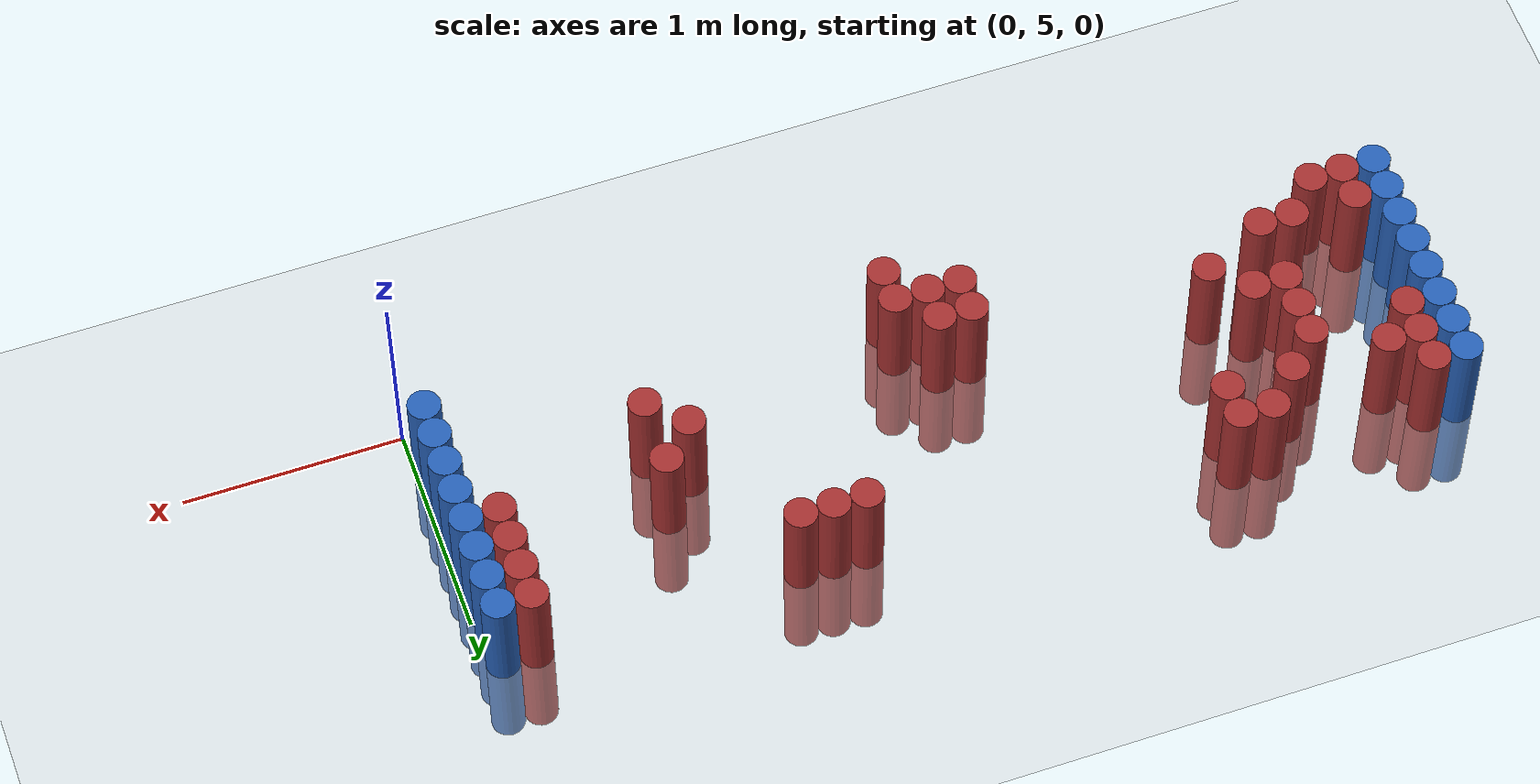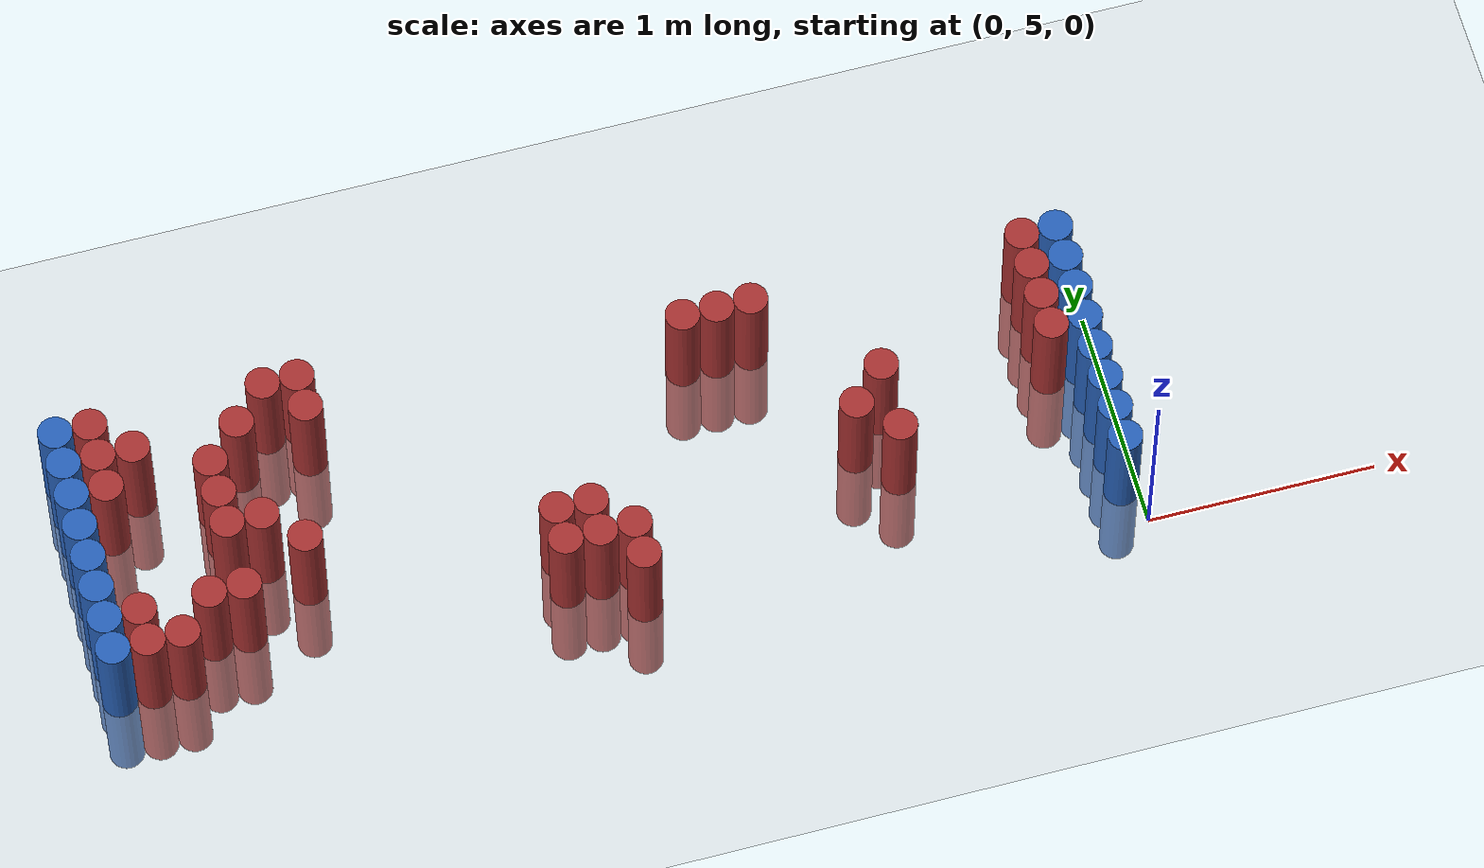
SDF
<sdf version="1.6">
 <world name="default">
  <model name="ground_plane">
   <static>1</static>
   <link name="link">
    <collision name="collision">
     <geometry><plane><normal>0 0 1</normal><size>100 100</size></plane></geometry>
     <surface><friction><ode><mu>100</mu><mu2>50</mu2></ode></friction></surface>
    </collision>
    <visual name="visual">
     <cast_shadows>0</cast_shadows>
     <geometry><plane><normal>0 0 1</normal><size>100 100</size></plane></geometry>
     <material>
      <script><uri>file://media/materials/scripts/gazebo.material</uri><name>Gazebo/Grey</name></script>
     </material>
    </visual>
   </link>
  </model>
  <model name="unit_cylinder_97">
   <static>1</static>
   <pose>-4.425000 5.325000 0.000000 0.000000 0.000000 0.000000</pose>
   <link name="link">
    <inertial>
     <mass>1</mass>
     <inertia><ixx>0.145833</ixx><ixy>0</ixy><ixz>0</ixz><iyy>0.145833</iyy><iyz>0</iyz><izz>0.125</izz></inertia>
    </inertial>
    <collision name="collision">
     <geometry><cylinder><radius>0.075000</radius><length>1</length></cylinder></geometry>
    </collision>
    <visual name="visual">
     <geometry><cylinder><radius>0.075000</radius><length>1</length></cylinder></geometry>
     <material>
      <ambient>0.152000 0.379000 0.720000 1</ambient>
      <diffuse>0.152000 0.379000 0.720000 1</diffuse>
     </material>
     <material>
      <script><name>Gazebo/Grey</name><uri>file://media/materials/scripts/gazebo.material</uri></script>
     </material>
    </visual>
   </link>
  </model>
  <model name="unit_cylinder_98">
   <static>1</static>
   <pose>-4.425000 5.475000 0.000000 0.000000 0.000000 0.000000</pose>
   <link name="link">
    <inertial>
     <mass>1</mass>
     <inertia><ixx>0.145833</ixx><ixy>0</ixy><ixz>0</ixz><iyy>0.145833</iyy><iyz>0</iyz><izz>0.125</izz></inertia>
    </inertial>
    <collision name="collision">
     <geometry><cylinder><radius>0.075000</radius><length>1</length></cylinder></geometry>
    </collision>
    <visual name="visual">
     <geometry><cylinder><radius>0.075000</radius><length>1</length></cylinder></geometry>
     <material>
      <ambient>0.152000 0.379000 0.720000 1</ambient>
      <diffuse>0.152000 0.379000 0.720000 1</diffuse>
     </material>
     <material>
      <script><name>Gazebo/Grey</name><uri>file://media/materials/scripts/gazebo.material</uri></script>
     </material>
    </visual>
   </link>
  </model>
  <model name="unit_cylinder_99">
   <static>1</static>
   <pose>-4.425000 5.625000 0.000000 0.000000 0.000000 0.000000</pose>
   <link name="link">
    <inertial>
     <mass>1</mass>
     <inertia><ixx>0.145833</ixx><ixy>0</ixy><ixz>0</ixz><iyy>0.145833</iyy><iyz>0</iyz><izz>0.125</izz></inertia>
    </inertial>
    <collision name="collision">
     <geometry><cylinder><radius>0.075000</radius><length>1</length></cylinder></geometry>
    </collision>
    <visual name="visual">
     <geometry><cylinder><radius>0.075000</radius><length>1</length></cylinder></geometry>
     <material>
      <ambient>0.152000 0.379000 0.720000 1</ambient>
      <diffuse>0.152000 0.379000 0.720000 1</diffuse>
     </material>
     <material>
      <script><name>Gazebo/Grey</name><uri>file://media/materials/scripts/gazebo.material</uri></script>
     </material>
    </visual>
   </link>
  </model>
  <model name="unit_cylinder_100">
   <static>1</static>
   <pose>-4.425000 5.775000 0.000000 0.000000 0.000000 0.000000</pose>
   <link name="link">
    <inertial>
     <mass>1</mass>
     <inertia><ixx>0.145833</ixx><ixy>0</ixy><ixz>0</ixz><iyy>0.145833</iyy><iyz>0</iyz><izz>0.125</izz></inertia>
    </inertial>
    <collision name="collision">
     <geometry><cylinder><radius>0.075000</radius><length>1</length></cylinder></geometry>
    </collision>
    <visual name="visual">
     <geometry><cylinder><radius>0.075000</radius><length>1</length></cylinder></geometry>
     <material>
      <ambient>0.152000 0.379000 0.720000 1</ambient>
      <diffuse>0.152000 0.379000 0.720000 1</diffuse>
     </material>
     <material>
      <script><name>Gazebo/Grey</name><uri>file://media/materials/scripts/gazebo.material</uri></script>
     </material>
    </visual>
   </link>
  </model>
  <model name="unit_cylinder_101">
   <static>1</static>
   <pose>-4.425000 5.925000 0.000000 0.000000 0.000000 0.000000</pose>
   <link name="link">
    <inertial>
     <mass>1</mass>
     <inertia><ixx>0.145833</ixx><ixy>0</ixy><ixz>0</ixz><iyy>0.145833</iyy><iyz>0</iyz><izz>0.125</izz></inertia>
    </inertial>
    <collision name="collision">
     <geometry><cylinder><radius>0.075000</radius><length>1</length></cylinder></geometry>
    </collision>
    <visual name="visual">
     <geometry><cylinder><radius>0.075000</radius><length>1</length></cylinder></geometry>
     <material>
      <ambient>0.152000 0.379000 0.720000 1</ambient>
      <diffuse>0.152000 0.379000 0.720000 1</diffuse>
     </material>
     <material>
      <script><name>Gazebo/Grey</name><uri>file://media/materials/scripts/gazebo.material</uri></script>
     </material>
    </visual>
   </link>
  </model>
  <model name="unit_cylinder_102">
   <static>1</static>
   <pose>-4.425000 6.075000 0.000000 0.000000 0.000000 0.000000</pose>
   <link name="link">
    <inertial>
     <mass>1</mass>
     <inertia><ixx>0.145833</ixx><ixy>0</ixy><ixz>0</ixz><iyy>0.145833</iyy><iyz>0</iyz><izz>0.125</izz></inertia>
    </inertial>
    <collision name="collision">
     <geometry><cylinder><radius>0.075000</radius><length>1</length></cylinder></geometry>
    </collision>
    <visual name="visual">
     <geometry><cylinder><radius>0.075000</radius><length>1</length></cylinder></geometry>
     <material>
      <ambient>0.152000 0.379000 0.720000 1</ambient>
      <diffuse>0.152000 0.379000 0.720000 1</diffuse>
     </material>
     <material>
      <script><name>Gazebo/Grey</name><uri>file://media/materials/scripts/gazebo.material</uri></script>
     </material>
    </visual>
   </link>
  </model>
  <model name="unit_cylinder_103">
   <static>1</static>
   <pose>-4.425000 6.225000 0.000000 0.000000 0.000000 0.000000</pose>
   <link name="link">
    <inertial>
     <mass>1</mass>
     <inertia><ixx>0.145833</ixx><ixy>0</ixy><ixz>0</ixz><iyy>0.145833</iyy><iyz>0</iyz><izz>0.125</izz></inertia>
    </inertial>
    <collision name="collision">
     <geometry><cylinder><radius>0.075000</radius><length>1</length></cylinder></geometry>
    </collision>
    <visual name="visual">
     <geometry><cylinder><radius>0.075000</radius><length>1</length></cylinder></geometry>
     <material>
      <ambient>0.152000 0.379000 0.720000 1</ambient>
      <diffuse>0.152000 0.379000 0.720000 1</diffuse>
     </material>
     <material>
      <script><name>Gazebo/Grey</name><uri>file://media/materials/scripts/gazebo.material</uri></script>
     </material>
    </visual>
   </link>
  </model>
  <model name="unit_cylinder_104">
   <static>1</static>
   <pose>-4.425000 6.375000 0.000000 0.000000 0.000000 0.000000</pose>
   <link name="link">
    <inertial>
     <mass>1</mass>
     <inertia><ixx>0.145833</ixx><ixy>0</ixy><ixz>0</ixz><iyy>0.145833</iyy><iyz>0</iyz><izz>0.125</izz></inertia>
    </inertial>
    <collision name="collision">
     <geometry><cylinder><radius>0.075000</radius><length>1</length></cylinder></geometry>
    </collision>
    <visual name="visual">
     <geometry><cylinder><radius>0.075000</radius><length>1</length></cylinder></geometry>
     <material>
      <ambient>0.152000 0.379000 0.720000 1</ambient>
      <diffuse>0.152000 0.379000 0.720000 1</diffuse>
     </material>
     <material>
      <script><name>Gazebo/Grey</name><uri>file://media/materials/scripts/gazebo.material</uri></script>
     </material>
    </visual>
   </link>
  </model>
  <model name="unit_cylinder_127">
   <static>1</static>
   <pose>-4.275000 5.325000 0.000000 0.000000 0.000000 0.000000</pose>
   <link name="link">
    <inertial>
     <mass>1</mass>
     <inertia><ixx>0.145833</ixx><ixy>0</ixy><ixz>0</ixz><iyy>0.145833</iyy><iyz>0</iyz><izz>0.125</izz></inertia>
    </inertial>
    <collision name="collision">
     <geometry><cylinder><radius>0.075000</radius><length>1</length></cylinder></geometry>
    </collision>
    <visual name="visual">
     <geometry><cylinder><radius>0.075000</radius><length>1</length></cylinder></geometry>
     <material>
      <ambient>0.648000 0.192000 0.192000 1</ambient>
      <diffuse>0.648000 0.192000 0.192000 1</diffuse>
     </material>
     <material>
      <script><name>Gazebo/Grey</name><uri>file://media/materials/scripts/gazebo.material</uri></script>
     </material>
    </visual>
   </link>
  </model>
  <model name="unit_cylinder_128">
   <static>1</static>
   <pose>-4.275000 5.475000 0.000000 0.000000 0.000000 0.000000</pose>
   <link name="link">
    <inertial>
     <mass>1</mass>
     <inertia><ixx>0.145833</ixx><ixy>0</ixy><ixz>0</ixz><iyy>0.145833</iyy><iyz>0</iyz><izz>0.125</izz></inertia>
    </inertial>
    <collision name="collision">
     <geometry><cylinder><radius>0.075000</radius><length>1</length></cylinder></geometry>
    </collision>
    <visual name="visual">
     <geometry><cylinder><radius>0.075000</radius><length>1</length></cylinder></geometry>
     <material>
      <ambient>0.648000 0.192000 0.192000 1</ambient>
      <diffuse>0.648000 0.192000 0.192000 1</diffuse>
     </material>
     <material>
      <script><name>Gazebo/Grey</name><uri>file://media/materials/scripts/gazebo.material</uri></script>
     </material>
    </visual>
   </link>
  </model>
  <model name="unit_cylinder_129">
   <static>1</static>
   <pose>-4.275000 6.075000 0.000000 0.000000 0.000000 0.000000</pose>
   <link name="link">
    <inertial>
     <mass>1</mass>
     <inertia><ixx>0.145833</ixx><ixy>0</ixy><ixz>0</ixz><iyy>0.145833</iyy><iyz>0</iyz><izz>0.125</izz></inertia>
    </inertial>
    <collision name="collision">
     <geometry><cylinder><radius>0.075000</radius><length>1</length></cylinder></geometry>
    </collision>
    <visual name="visual">
     <geometry><cylinder><radius>0.075000</radius><length>1</length></cylinder></geometry>
     <material>
      <ambient>0.648000 0.192000 0.192000 1</ambient>
      <diffuse>0.648000 0.192000 0.192000 1</diffuse>
     </material>
     <material>
      <script><name>Gazebo/Grey</name><uri>file://media/materials/scripts/gazebo.material</uri></script>
     </material>
    </visual>
   </link>
  </model>
  <model name="unit_cylinder_130">
   <static>1</static>
   <pose>-4.275000 6.225000 0.000000 0.000000 0.000000 0.000000</pose>
   <link name="link">
    <inertial>
     <mass>1</mass>
     <inertia><ixx>0.145833</ixx><ixy>0</ixy><ixz>0</ixz><iyy>0.145833</iyy><iyz>0</iyz><izz>0.125</izz></inertia>
    </inertial>
    <collision name="collision">
     <geometry><cylinder><radius>0.075000</radius><length>1</length></cylinder></geometry>
    </collision>
    <visual name="visual">
     <geometry><cylinder><radius>0.075000</radius><length>1</length></cylinder></geometry>
     <material>
      <ambient>0.648000 0.192000 0.192000 1</ambient>
      <diffuse>0.648000 0.192000 0.192000 1</diffuse>
     </material>
     <material>
      <script><name>Gazebo/Grey</name><uri>file://media/materials/scripts/gazebo.material</uri></script>
     </material>
    </visual>
   </link>
  </model>
  <model name="unit_cylinder_131">
   <static>1</static>
   <pose>-4.275000 6.375000 0.000000 0.000000 0.000000 0.000000</pose>
   <link name="link">
    <inertial>
     <mass>1</mass>
     <inertia><ixx>0.145833</ixx><ixy>0</ixy><ixz>0</ixz><iyy>0.145833</iyy><iyz>0</iyz><izz>0.125</izz></inertia>
    </inertial>
    <collision name="collision">
     <geometry><cylinder><radius>0.075000</radius><length>1</length></cylinder></geometry>
    </collision>
    <visual name="visual">
     <geometry><cylinder><radius>0.075000</radius><length>1</length></cylinder></geometry>
     <material>
      <ambient>0.648000 0.192000 0.192000 1</ambient>
      <diffuse>0.648000 0.192000 0.192000 1</diffuse>
     </material>
     <material>
      <script><name>Gazebo/Grey</name><uri>file://media/materials/scripts/gazebo.material</uri></script>
     </material>
    </visual>
   </link>
  </model>
  <model name="unit_cylinder_141">
   <static>1</static>
   <pose>-4.125000 5.325000 0.000000 0.000000 0.000000 0.000000</pose>
   <link name="link">
    <inertial>
     <mass>1</mass>
     <inertia><ixx>0.145833</ixx><ixy>0</ixy><ixz>0</ixz><iyy>0.145833</iyy><iyz>0</iyz><izz>0.125</izz></inertia>
    </inertial>
    <collision name="collision">
     <geometry><cylinder><radius>0.075000</radius><length>1</length></cylinder></geometry>
    </collision>
    <visual name="visual">
     <geometry><cylinder><radius>0.075000</radius><length>1</length></cylinder></geometry>
     <material>
      <ambient>0.648000 0.192000 0.192000 1</ambient>
      <diffuse>0.648000 0.192000 0.192000 1</diffuse>
     </material>
     <material>
      <script><name>Gazebo/Grey</name><uri>file://media/materials/scripts/gazebo.material</uri></script>
     </material>
    </visual>
   </link>
  </model>
  <model name="unit_cylinder_142">
   <static>1</static>
   <pose>-4.125000 6.225000 0.000000 0.000000 0.000000 0.000000</pose>
   <link name="link">
    <inertial>
     <mass>1</mass>
     <inertia><ixx>0.145833</ixx><ixy>0</ixy><ixz>0</ixz><iyy>0.145833</iyy><iyz>0</iyz><izz>0.125</izz></inertia>
    </inertial>
    <collision name="collision">
     <geometry><cylinder><radius>0.075000</radius><length>1</length></cylinder></geometry>
    </collision>
    <visual name="visual">
     <geometry><cylinder><radius>0.075000</radius><length>1</length></cylinder></geometry>
     <material>
      <ambient>0.648000 0.192000 0.192000 1</ambient>
      <diffuse>0.648000 0.192000 0.192000 1</diffuse>
     </material>
     <material>
      <script><name>Gazebo/Grey</name><uri>file://media/materials/scripts/gazebo.material</uri></script>
     </material>
    </visual>
   </link>
  </model>
  <model name="unit_cylinder_143">
   <static>1</static>
   <pose>-3.975000 5.475000 0.000000 0.000000 0.000000 0.000000</pose>
   <link name="link">
    <inertial>
     <mass>1</mass>
     <inertia><ixx>0.145833</ixx><ixy>0</ixy><ixz>0</ixz><iyy>0.145833</iyy><iyz>0</iyz><izz>0.125</izz></inertia>
    </inertial>
    <collision name="collision">
     <geometry><cylinder><radius>0.075000</radius><length>1</length></cylinder></geometry>
    </collision>
    <visual name="visual">
     <geometry><cylinder><radius>0.075000</radius><length>1</length></cylinder></geometry>
     <material>
      <ambient>0.648000 0.192000 0.192000 1</ambient>
      <diffuse>0.648000 0.192000 0.192000 1</diffuse>
     </material>
     <material>
      <script><name>Gazebo/Grey</name><uri>file://media/materials/scripts/gazebo.material</uri></script>
     </material>
    </visual>
   </link>
  </model>
  <model name="unit_cylinder_144">
   <static>1</static>
   <pose>-3.825000 5.475000 0.000000 0.000000 0.000000 0.000000</pose>
   <link name="link">
    <inertial>
     <mass>1</mass>
     <inertia><ixx>0.145833</ixx><ixy>0</ixy><ixz>0</ixz><iyy>0.145833</iyy><iyz>0</iyz><izz>0.125</izz></inertia>
    </inertial>
    <collision name="collision">
     <geometry><cylinder><radius>0.075000</radius><length>1</length></cylinder></geometry>
    </collision>
    <visual name="visual">
     <geometry><cylinder><radius>0.075000</radius><length>1</length></cylinder></geometry>
     <material>
      <ambient>0.648000 0.192000 0.192000 1</ambient>
      <diffuse>0.648000 0.192000 0.192000 1</diffuse>
     </material>
     <material>
      <script><name>Gazebo/Grey</name><uri>file://media/materials/scripts/gazebo.material</uri></script>
     </material>
    </visual>
   </link>
  </model>
  <model name="unit_cylinder_145">
   <static>1</static>
   <pose>-3.825000 5.775000 0.000000 0.000000 0.000000 0.000000</pose>
   <link name="link">
    <inertial>
     <mass>1</mass>
     <inertia><ixx>0.145833</ixx><ixy>0</ixy><ixz>0</ixz><iyy>0.145833</iyy><iyz>0</iyz><izz>0.125</izz></inertia>
    </inertial>
    <collision name="collision">
     <geometry><cylinder><radius>0.075000</radius><length>1</length></cylinder></geometry>
    </collision>
    <visual name="visual">
     <geometry><cylinder><radius>0.075000</radius><length>1</length></cylinder></geometry>
     <material>
      <ambient>0.648000 0.192000 0.192000 1</ambient>
      <diffuse>0.648000 0.192000 0.192000 1</diffuse>
     </material>
     <material>
      <script><name>Gazebo/Grey</name><uri>file://media/materials/scripts/gazebo.material</uri></script>
     </material>
    </visual>
   </link>
  </model>
  <model name="unit_cylinder_146">
   <static>1</static>
   <pose>-3.825000 5.925000 0.000000 0.000000 0.000000 0.000000</pose>
   <link name="link">
    <inertial>
     <mass>1</mass>
     <inertia><ixx>0.145833</ixx><ixy>0</ixy><ixz>0</ixz><iyy>0.145833</iyy><iyz>0</iyz><izz>0.125</izz></inertia>
    </inertial>
    <collision name="collision">
     <geometry><cylinder><radius>0.075000</radius><length>1</length></cylinder></geometry>
    </collision>
    <visual name="visual">
     <geometry><cylinder><radius>0.075000</radius><length>1</length></cylinder></geometry>
     <material>
      <ambient>0.648000 0.192000 0.192000 1</ambient>
      <diffuse>0.648000 0.192000 0.192000 1</diffuse>
     </material>
     <material>
      <script><name>Gazebo/Grey</name><uri>file://media/materials/scripts/gazebo.material</uri></script>
     </material>
    </visual>
   </link>
  </model>
  <model name="unit_cylinder_147">
   <static>1</static>
   <pose>-3.825000 6.075000 0.000000 0.000000 0.000000 0.000000</pose>
   <link name="link">
    <inertial>
     <mass>1</mass>
     <inertia><ixx>0.145833</ixx><ixy>0</ixy><ixz>0</ixz><iyy>0.145833</iyy><iyz>0</iyz><izz>0.125</izz></inertia>
    </inertial>
    <collision name="collision">
     <geometry><cylinder><radius>0.075000</radius><length>1</length></cylinder></geometry>
    </collision>
    <visual name="visual">
     <geometry><cylinder><radius>0.075000</radius><length>1</length></cylinder></geometry>
     <material>
      <ambient>0.648000 0.192000 0.192000 1</ambient>
      <diffuse>0.648000 0.192000 0.192000 1</diffuse>
     </material>
     <material>
      <script><name>Gazebo/Grey</name><uri>file://media/materials/scripts/gazebo.material</uri></script>
     </material>
    </visual>
   </link>
  </model>
  <model name="unit_cylinder_148">
   <static>1</static>
   <pose>-3.675000 5.775000 0.000000 0.000000 0.000000 0.000000</pose>
   <link name="link">
    <inertial>
     <mass>1</mass>
     <inertia><ixx>0.145833</ixx><ixy>0</ixy><ixz>0</ixz><iyy>0.145833</iyy><iyz>0</iyz><izz>0.125</izz></inertia>
    </inertial>
    <collision name="collision">
     <geometry><cylinder><radius>0.075000</radius><length>1</length></cylinder></geometry>
    </collision>
    <visual name="visual">
     <geometry><cylinder><radius>0.075000</radius><length>1</length></cylinder></geometry>
     <material>
      <ambient>0.648000 0.192000 0.192000 1</ambient>
      <diffuse>0.648000 0.192000 0.192000 1</diffuse>
     </material>
     <material>
      <script><name>Gazebo/Grey</name><uri>file://media/materials/scripts/gazebo.material</uri></script>
     </material>
    </visual>
   </link>
  </model>
  <model name="unit_cylinder_149">
   <static>1</static>
   <pose>-3.675000 6.225000 0.000000 0.000000 0.000000 0.000000</pose>
   <link name="link">
    <inertial>
     <mass>1</mass>
     <inertia><ixx>0.145833</ixx><ixy>0</ixy><ixz>0</ixz><iyy>0.145833</iyy><iyz>0</iyz><izz>0.125</izz></inertia>
    </inertial>
    <collision name="collision">
     <geometry><cylinder><radius>0.075000</radius><length>1</length></cylinder></geometry>
    </collision>
    <visual name="visual">
     <geometry><cylinder><radius>0.075000</radius><length>1</length></cylinder></geometry>
     <material>
      <ambient>0.648000 0.192000 0.192000 1</ambient>
      <diffuse>0.648000 0.192000 0.192000 1</diffuse>
     </material>
     <material>
      <script><name>Gazebo/Grey</name><uri>file://media/materials/scripts/gazebo.material</uri></script>
     </material>
    </visual>
   </link>
  </model>
  <model name="unit_cylinder_150">
   <static>1</static>
   <pose>-3.525000 5.625000 0.000000 0.000000 0.000000 0.000000</pose>
   <link name="link">
    <inertial>
     <mass>1</mass>
     <inertia><ixx>0.145833</ixx><ixy>0</ixy><ixz>0</ixz><iyy>0.145833</iyy><iyz>0</iyz><izz>0.125</izz></inertia>
    </inertial>
    <collision name="collision">
     <geometry><cylinder><radius>0.075000</radius><length>1</length></cylinder></geometry>
    </collision>
    <visual name="visual">
     <geometry><cylinder><radius>0.075000</radius><length>1</length></cylinder></geometry>
     <material>
      <ambient>0.648000 0.192000 0.192000 1</ambient>
      <diffuse>0.648000 0.192000 0.192000 1</diffuse>
     </material>
     <material>
      <script><name>Gazebo/Grey</name><uri>file://media/materials/scripts/gazebo.material</uri></script>
     </material>
    </visual>
   </link>
  </model>
  <model name="unit_cylinder_151">
   <static>1</static>
   <pose>-3.525000 6.375000 0.000000 0.000000 0.000000 0.000000</pose>
   <link name="link">
    <inertial>
     <mass>1</mass>
     <inertia><ixx>0.145833</ixx><ixy>0</ixy><ixz>0</ixz><iyy>0.145833</iyy><iyz>0</iyz><izz>0.125</izz></inertia>
    </inertial>
    <collision name="collision">
     <geometry><cylinder><radius>0.075000</radius><length>1</length></cylinder></geometry>
    </collision>
    <visual name="visual">
     <geometry><cylinder><radius>0.075000</radius><length>1</length></cylinder></geometry>
     <material>
      <ambient>0.648000 0.192000 0.192000 1</ambient>
      <diffuse>0.648000 0.192000 0.192000 1</diffuse>
     </material>
     <material>
      <script><name>Gazebo/Grey</name><uri>file://media/materials/scripts/gazebo.material</uri></script>
     </material>
    </visual>
   </link>
  </model>
  <model name="unit_cylinder_152">
   <static>1</static>
   <pose>-3.375000 6.225000 0.000000 0.000000 0.000000 0.000000</pose>
   <link name="link">
    <inertial>
     <mass>1</mass>
     <inertia><ixx>0.145833</ixx><ixy>0</ixy><ixz>0</ixz><iyy>0.145833</iyy><iyz>0</iyz><izz>0.125</izz></inertia>
    </inertial>
    <collision name="collision">
     <geometry><cylinder><radius>0.075000</radius><length>1</length></cylinder></geometry>
    </collision>
    <visual name="visual">
     <geometry><cylinder><radius>0.075000</radius><length>1</length></cylinder></geometry>
     <material>
      <ambient>0.648000 0.192000 0.192000 1</ambient>
      <diffuse>0.648000 0.192000 0.192000 1</diffuse>
     </material>
     <material>
      <script><name>Gazebo/Grey</name><uri>file://media/materials/scripts/gazebo.material</uri></script>
     </material>
    </visual>
   </link>
  </model>
  <model name="unit_cylinder_153">
   <static>1</static>
   <pose>-3.375000 6.375000 0.000000 0.000000 0.000000 0.000000</pose>
   <link name="link">
    <inertial>
     <mass>1</mass>
     <inertia><ixx>0.145833</ixx><ixy>0</ixy><ixz>0</ixz><iyy>0.145833</iyy><iyz>0</iyz><izz>0.125</izz></inertia>
    </inertial>
    <collision name="collision">
     <geometry><cylinder><radius>0.075000</radius><length>1</length></cylinder></geometry>
    </collision>
    <visual name="visual">
     <geometry><cylinder><radius>0.075000</radius><length>1</length></cylinder></geometry>
     <material>
      <ambient>0.648000 0.192000 0.192000 1</ambient>
      <diffuse>0.648000 0.192000 0.192000 1</diffuse>
     </material>
     <material>
      <script><name>Gazebo/Grey</name><uri>file://media/materials/scripts/gazebo.material</uri></script>
     </material>
    </visual>
   </link>
  </model>
  <model name="unit_cylinder_185">
   <static>1</static>
   <pose>-2.475000 5.325000 0.000000 0.000000 0.000000 0.000000</pose>
   <link name="link">
    <inertial>
     <mass>1</mass>
     <inertia><ixx>0.145833</ixx><ixy>0</ixy><ixz>0</ixz><iyy>0.145833</iyy><iyz>0</iyz><izz>0.125</izz></inertia>
    </inertial>
    <collision name="collision">
     <geometry><cylinder><radius>0.075000</radius><length>1</length></cylinder></geometry>
    </collision>
    <visual name="visual">
     <geometry><cylinder><radius>0.075000</radius><length>1</length></cylinder></geometry>
     <material>
      <ambient>0.648000 0.192000 0.192000 1</ambient>
      <diffuse>0.648000 0.192000 0.192000 1</diffuse>
     </material>
     <material>
      <script><name>Gazebo/Grey</name><uri>file://media/materials/scripts/gazebo.material</uri></script>
     </material>
    </visual>
   </link>
  </model>
  <model name="unit_cylinder_186">
   <static>1</static>
   <pose>-2.475000 5.475000 0.000000 0.000000 0.000000 0.000000</pose>
   <link name="link">
    <inertial>
     <mass>1</mass>
     <inertia><ixx>0.145833</ixx><ixy>0</ixy><ixz>0</ixz><iyy>0.145833</iyy><iyz>0</iyz><izz>0.125</izz></inertia>
    </inertial>
    <collision name="collision">
     <geometry><cylinder><radius>0.075000</radius><length>1</length></cylinder></geometry>
    </collision>
    <visual name="visual">
     <geometry><cylinder><radius>0.075000</radius><length>1</length></cylinder></geometry>
     <material>
      <ambient>0.648000 0.192000 0.192000 1</ambient>
      <diffuse>0.648000 0.192000 0.192000 1</diffuse>
     </material>
     <material>
      <script><name>Gazebo/Grey</name><uri>file://media/materials/scripts/gazebo.material</uri></script>
     </material>
    </visual>
   </link>
  </model>
  <model name="unit_cylinder_189">
   <static>1</static>
   <pose>-2.325000 5.325000 0.000000 0.000000 0.000000 0.000000</pose>
   <link name="link">
    <inertial>
     <mass>1</mass>
     <inertia><ixx>0.145833</ixx><ixy>0</ixy><ixz>0</ixz><iyy>0.145833</iyy><iyz>0</iyz><izz>0.125</izz></inertia>
    </inertial>
    <collision name="collision">
     <geometry><cylinder><radius>0.075000</radius><length>1</length></cylinder></geometry>
    </collision>
    <visual name="visual">
     <geometry><cylinder><radius>0.075000</radius><length>1</length></cylinder></geometry>
     <material>
      <ambient>0.648000 0.192000 0.192000 1</ambient>
      <diffuse>0.648000 0.192000 0.192000 1</diffuse>
     </material>
     <material>
      <script><name>Gazebo/Grey</name><uri>file://media/materials/scripts/gazebo.material</uri></script>
     </material>
    </visual>
   </link>
  </model>
  <model name="unit_cylinder_190">
   <static>1</static>
   <pose>-2.325000 5.475000 0.000000 0.000000 0.000000 0.000000</pose>
   <link name="link">
    <inertial>
     <mass>1</mass>
     <inertia><ixx>0.145833</ixx><ixy>0</ixy><ixz>0</ixz><iyy>0.145833</iyy><iyz>0</iyz><izz>0.125</izz></inertia>
    </inertial>
    <collision name="collision">
     <geometry><cylinder><radius>0.075000</radius><length>1</length></cylinder></geometry>
    </collision>
    <visual name="visual">
     <geometry><cylinder><radius>0.075000</radius><length>1</length></cylinder></geometry>
     <material>
      <ambient>0.648000 0.192000 0.192000 1</ambient>
      <diffuse>0.648000 0.192000 0.192000 1</diffuse>
     </material>
     <material>
      <script><name>Gazebo/Grey</name><uri>file://media/materials/scripts/gazebo.material</uri></script>
     </material>
    </visual>
   </link>
  </model>
  <model name="unit_cylinder_193">
   <static>1</static>
   <pose>-2.175000 5.175000 0.000000 0.000000 0.000000 0.000000</pose>
   <link name="link">
    <inertial>
     <mass>1</mass>
     <inertia><ixx>0.145833</ixx><ixy>0</ixy><ixz>0</ixz><iyy>0.145833</iyy><iyz>0</iyz><izz>0.125</izz></inertia>
    </inertial>
    <collision name="collision">
     <geometry><cylinder><radius>0.075000</radius><length>1</length></cylinder></geometry>
    </collision>
    <visual name="visual">
     <geometry><cylinder><radius>0.075000</radius><length>1</length></cylinder></geometry>
     <material>
      <ambient>0.648000 0.192000 0.192000 1</ambient>
      <diffuse>0.648000 0.192000 0.192000 1</diffuse>
     </material>
     <material>
      <script><name>Gazebo/Grey</name><uri>file://media/materials/scripts/gazebo.material</uri></script>
     </material>
    </visual>
   </link>
  </model>
  <model name="unit_cylinder_194">
   <static>1</static>
   <pose>-2.175000 5.325000 0.000000 0.000000 0.000000 0.000000</pose>
   <link name="link">
    <inertial>
     <mass>1</mass>
     <inertia><ixx>0.145833</ixx><ixy>0</ixy><ixz>0</ixz><iyy>0.145833</iyy><iyz>0</iyz><izz>0.125</izz></inertia>
    </inertial>
    <collision name="collision">
     <geometry><cylinder><radius>0.075000</radius><length>1</length></cylinder></geometry>
    </collision>
    <visual name="visual">
     <geometry><cylinder><radius>0.075000</radius><length>1</length></cylinder></geometry>
     <material>
      <ambient>0.648000 0.192000 0.192000 1</ambient>
      <diffuse>0.648000 0.192000 0.192000 1</diffuse>
     </material>
     <material>
      <script><name>Gazebo/Grey</name><uri>file://media/materials/scripts/gazebo.material</uri></script>
     </material>
    </visual>
   </link>
  </model>
  <model name="unit_cylinder_204">
   <static>1</static>
   <pose>-1.725000 6.225000 0.000000 0.000000 0.000000 0.000000</pose>
   <link name="link">
    <inertial>
     <mass>1</mass>
     <inertia><ixx>0.145833</ixx><ixy>0</ixy><ixz>0</ixz><iyy>0.145833</iyy><iyz>0</iyz><izz>0.125</izz></inertia>
    </inertial>
    <collision name="collision">
     <geometry><cylinder><radius>0.075000</radius><length>1</length></cylinder></geometry>
    </collision>
    <visual name="visual">
     <geometry><cylinder><radius>0.075000</radius><length>1</length></cylinder></geometry>
     <material>
      <ambient>0.648000 0.192000 0.192000 1</ambient>
      <diffuse>0.648000 0.192000 0.192000 1</diffuse>
     </material>
     <material>
      <script><name>Gazebo/Grey</name><uri>file://media/materials/scripts/gazebo.material</uri></script>
     </material>
    </visual>
   </link>
  </model>
  <model name="unit_cylinder_207">
   <static>1</static>
   <pose>-1.575000 6.225000 0.000000 0.000000 0.000000 0.000000</pose>
   <link name="link">
    <inertial>
     <mass>1</mass>
     <inertia><ixx>0.145833</ixx><ixy>0</ixy><ixz>0</ixz><iyy>0.145833</iyy><iyz>0</iyz><izz>0.125</izz></inertia>
    </inertial>
    <collision name="collision">
     <geometry><cylinder><radius>0.075000</radius><length>1</length></cylinder></geometry>
    </collision>
    <visual name="visual">
     <geometry><cylinder><radius>0.075000</radius><length>1</length></cylinder></geometry>
     <material>
      <ambient>0.648000 0.192000 0.192000 1</ambient>
      <diffuse>0.648000 0.192000 0.192000 1</diffuse>
     </material>
     <material>
      <script><name>Gazebo/Grey</name><uri>file://media/materials/scripts/gazebo.material</uri></script>
     </material>
    </visual>
   </link>
  </model>
  <model name="unit_cylinder_215">
   <static>1</static>
   <pose>-1.425000 6.225000 0.000000 0.000000 0.000000 0.000000</pose>
   <link name="link">
    <inertial>
     <mass>1</mass>
     <inertia><ixx>0.145833</ixx><ixy>0</ixy><ixz>0</ixz><iyy>0.145833</iyy><iyz>0</iyz><izz>0.125</izz></inertia>
    </inertial>
    <collision name="collision">
     <geometry><cylinder><radius>0.075000</radius><length>1</length></cylinder></geometry>
    </collision>
    <visual name="visual">
     <geometry><cylinder><radius>0.075000</radius><length>1</length></cylinder></geometry>
     <material>
      <ambient>0.648000 0.192000 0.192000 1</ambient>
      <diffuse>0.648000 0.192000 0.192000 1</diffuse>
     </material>
     <material>
      <script><name>Gazebo/Grey</name><uri>file://media/materials/scripts/gazebo.material</uri></script>
     </material>
    </visual>
   </link>
  </model>
  <model name="unit_cylinder_227">
   <static>1</static>
   <pose>-1.125000 5.625000 0.000000 0.000000 0.000000 0.000000</pose>
   <link name="link">
    <inertial>
     <mass>1</mass>
     <inertia><ixx>0.145833</ixx><ixy>0</ixy><ixz>0</ixz><iyy>0.145833</iyy><iyz>0</iyz><izz>0.125</izz></inertia>
    </inertial>
    <collision name="collision">
     <geometry><cylinder><radius>0.075000</radius><length>1</length></cylinder></geometry>
    </collision>
    <visual name="visual">
     <geometry><cylinder><radius>0.075000</radius><length>1</length></cylinder></geometry>
     <material>
      <ambient>0.648000 0.192000 0.192000 1</ambient>
      <diffuse>0.648000 0.192000 0.192000 1</diffuse>
     </material>
     <material>
      <script><name>Gazebo/Grey</name><uri>file://media/materials/scripts/gazebo.material</uri></script>
     </material>
    </visual>
   </link>
  </model>
  <model name="unit_cylinder_230">
   <static>1</static>
   <pose>-0.975000 5.475000 0.000000 0.000000 0.000000 0.000000</pose>
   <link name="link">
    <inertial>
     <mass>1</mass>
     <inertia><ixx>0.145833</ixx><ixy>0</ixy><ixz>0</ixz><iyy>0.145833</iyy><iyz>0</iyz><izz>0.125</izz></inertia>
    </inertial>
    <collision name="collision">
     <geometry><cylinder><radius>0.075000</radius><length>1</length></cylinder></geometry>
    </collision>
    <visual name="visual">
     <geometry><cylinder><radius>0.075000</radius><length>1</length></cylinder></geometry>
     <material>
      <ambient>0.648000 0.192000 0.192000 1</ambient>
      <diffuse>0.648000 0.192000 0.192000 1</diffuse>
     </material>
     <material>
      <script><name>Gazebo/Grey</name><uri>file://media/materials/scripts/gazebo.material</uri></script>
     </material>
    </visual>
   </link>
  </model>
  <model name="unit_cylinder_231">
   <static>1</static>
   <pose>-0.975000 5.775000 0.000000 0.000000 0.000000 0.000000</pose>
   <link name="link">
    <inertial>
     <mass>1</mass>
     <inertia><ixx>0.145833</ixx><ixy>0</ixy><ixz>0</ixz><iyy>0.145833</iyy><iyz>0</iyz><izz>0.125</izz></inertia>
    </inertial>
    <collision name="collision">
     <geometry><cylinder><radius>0.075000</radius><length>1</length></cylinder></geometry>
    </collision>
    <visual name="visual">
     <geometry><cylinder><radius>0.075000</radius><length>1</length></cylinder></geometry>
     <material>
      <ambient>0.648000 0.192000 0.192000 1</ambient>
      <diffuse>0.648000 0.192000 0.192000 1</diffuse>
     </material>
     <material>
      <script><name>Gazebo/Grey</name><uri>file://media/materials/scripts/gazebo.material</uri></script>
     </material>
    </visual>
   </link>
  </model>
  <model name="unit_cylinder_255">
   <static>1</static>
   <pose>-0.225000 5.775000 0.000000 0.000000 0.000000 0.000000</pose>
   <link name="link">
    <inertial>
     <mass>1</mass>
     <inertia><ixx>0.145833</ixx><ixy>0</ixy><ixz>0</ixz><iyy>0.145833</iyy><iyz>0</iyz><izz>0.125</izz></inertia>
    </inertial>
    <collision name="collision">
     <geometry><cylinder><radius>0.075000</radius><length>1</length></cylinder></geometry>
    </collision>
    <visual name="visual">
     <geometry><cylinder><radius>0.075000</radius><length>1</length></cylinder></geometry>
     <material>
      <ambient>0.648000 0.192000 0.192000 1</ambient>
      <diffuse>0.648000 0.192000 0.192000 1</diffuse>
     </material>
     <material>
      <script><name>Gazebo/Grey</name><uri>file://media/materials/scripts/gazebo.material</uri></script>
     </material>
    </visual>
   </link>
  </model>
  <model name="unit_cylinder_256">
   <static>1</static>
   <pose>-0.225000 5.925000 0.000000 0.000000 0.000000 0.000000</pose>
   <link name="link">
    <inertial>
     <mass>1</mass>
     <inertia><ixx>0.145833</ixx><ixy>0</ixy><ixz>0</ixz><iyy>0.145833</iyy><iyz>0</iyz><izz>0.125</izz></inertia>
    </inertial>
    <collision name="collision">
     <geometry><cylinder><radius>0.075000</radius><length>1</length></cylinder></geometry>
    </collision>
    <visual name="visual">
     <geometry><cylinder><radius>0.075000</radius><length>1</length></cylinder></geometry>
     <material>
      <ambient>0.648000 0.192000 0.192000 1</ambient>
      <diffuse>0.648000 0.192000 0.192000 1</diffuse>
     </material>
     <material>
      <script><name>Gazebo/Grey</name><uri>file://media/materials/scripts/gazebo.material</uri></script>
     </material>
    </visual>
   </link>
  </model>
  <model name="unit_cylinder_257">
   <static>1</static>
   <pose>-0.225000 6.075000 0.000000 0.000000 0.000000 0.000000</pose>
   <link name="link">
    <inertial>
     <mass>1</mass>
     <inertia><ixx>0.145833</ixx><ixy>0</ixy><ixz>0</ixz><iyy>0.145833</iyy><iyz>0</iyz><izz>0.125</izz></inertia>
    </inertial>
    <collision name="collision">
     <geometry><cylinder><radius>0.075000</radius><length>1</length></cylinder></geometry>
    </collision>
    <visual name="visual">
     <geometry><cylinder><radius>0.075000</radius><length>1</length></cylinder></geometry>
     <material>
      <ambient>0.648000 0.192000 0.192000 1</ambient>
      <diffuse>0.648000 0.192000 0.192000 1</diffuse>
     </material>
     <material>
      <script><name>Gazebo/Grey</name><uri>file://media/materials/scripts/gazebo.material</uri></script>
     </material>
    </visual>
   </link>
  </model>
  <model name="unit_cylinder_258">
   <static>1</static>
   <pose>-0.225000 6.225000 0.000000 0.000000 0.000000 0.000000</pose>
   <link name="link">
    <inertial>
     <mass>1</mass>
     <inertia><ixx>0.145833</ixx><ixy>0</ixy><ixz>0</ixz><iyy>0.145833</iyy><iyz>0</iyz><izz>0.125</izz></inertia>
    </inertial>
    <collision name="collision">
     <geometry><cylinder><radius>0.075000</radius><length>1</length></cylinder></geometry>
    </collision>
    <visual name="visual">
     <geometry><cylinder><radius>0.075000</radius><length>1</length></cylinder></geometry>
     <material>
      <ambient>0.648000 0.192000 0.192000 1</ambient>
      <diffuse>0.648000 0.192000 0.192000 1</diffuse>
     </material>
     <material>
      <script><name>Gazebo/Grey</name><uri>file://media/materials/scripts/gazebo.material</uri></script>
     </material>
    </visual>
   </link>
  </model>
  <model name="unit_cylinder_269">
   <static>1</static>
   <pose>-0.075000 5.175000 0.000000 0.000000 0.000000 0.000000</pose>
   <link name="link">
    <inertial>
     <mass>1</mass>
     <inertia><ixx>0.145833</ixx><ixy>0</ixy><ixz>0</ixz><iyy>0.145833</iyy><iyz>0</iyz><izz>0.125</izz></inertia>
    </inertial>
    <collision name="collision">
     <geometry><cylinder><radius>0.075000</radius><length>1</length></cylinder></geometry>
    </collision>
    <visual name="visual">
     <geometry><cylinder><radius>0.075000</radius><length>1</length></cylinder></geometry>
     <material>
      <ambient>0.152000 0.379000 0.720000 1</ambient>
      <diffuse>0.152000 0.379000 0.720000 1</diffuse>
     </material>
     <material>
      <script><name>Gazebo/Grey</name><uri>file://media/materials/scripts/gazebo.material</uri></script>
     </material>
    </visual>
   </link>
  </model>
  <model name="unit_cylinder_270">
   <static>1</static>
   <pose>-0.075000 5.325000 0.000000 0.000000 0.000000 0.000000</pose>
   <link name="link">
    <inertial>
     <mass>1</mass>
     <inertia><ixx>0.145833</ixx><ixy>0</ixy><ixz>0</ixz><iyy>0.145833</iyy><iyz>0</iyz><izz>0.125</izz></inertia>
    </inertial>
    <collision name="collision">
     <geometry><cylinder><radius>0.075000</radius><length>1</length></cylinder></geometry>
    </collision>
    <visual name="visual">
     <geometry><cylinder><radius>0.075000</radius><length>1</length></cylinder></geometry>
     <material>
      <ambient>0.152000 0.379000 0.720000 1</ambient>
      <diffuse>0.152000 0.379000 0.720000 1</diffuse>
     </material>
     <material>
      <script><name>Gazebo/Grey</name><uri>file://media/materials/scripts/gazebo.material</uri></script>
     </material>
    </visual>
   </link>
  </model>
  <model name="unit_cylinder_271">
   <static>1</static>
   <pose>-0.075000 5.475000 0.000000 0.000000 0.000000 0.000000</pose>
   <link name="link">
    <inertial>
     <mass>1</mass>
     <inertia><ixx>0.145833</ixx><ixy>0</ixy><ixz>0</ixz><iyy>0.145833</iyy><iyz>0</iyz><izz>0.125</izz></inertia>
    </inertial>
    <collision name="collision">
     <geometry><cylinder><radius>0.075000</radius><length>1</length></cylinder></geometry>
    </collision>
    <visual name="visual">
     <geometry><cylinder><radius>0.075000</radius><length>1</length></cylinder></geometry>
     <material>
      <ambient>0.152000 0.379000 0.720000 1</ambient>
      <diffuse>0.152000 0.379000 0.720000 1</diffuse>
     </material>
     <material>
      <script><name>Gazebo/Grey</name><uri>file://media/materials/scripts/gazebo.material</uri></script>
     </material>
    </visual>
   </link>
  </model>
  <model name="unit_cylinder_272">
   <static>1</static>
   <pose>-0.075000 5.625000 0.000000 0.000000 0.000000 0.000000</pose>
   <link name="link">
    <inertial>
     <mass>1</mass>
     <inertia><ixx>0.145833</ixx><ixy>0</ixy><ixz>0</ixz><iyy>0.145833</iyy><iyz>0</iyz><izz>0.125</izz></inertia>
    </inertial>
    <collision name="collision">
     <geometry><cylinder><radius>0.075000</radius><length>1</length></cylinder></geometry>
    </collision>
    <visual name="visual">
     <geometry><cylinder><radius>0.075000</radius><length>1</length></cylinder></geometry>
     <material>
      <ambient>0.152000 0.379000 0.720000 1</ambient>
      <diffuse>0.152000 0.379000 0.720000 1</diffuse>
     </material>
     <material>
      <script><name>Gazebo/Grey</name><uri>file://media/materials/scripts/gazebo.material</uri></script>
     </material>
    </visual>
   </link>
  </model>
  <model name="unit_cylinder_273">
   <static>1</static>
   <pose>-0.075000 5.775000 0.000000 0.000000 0.000000 0.000000</pose>
   <link name="link">
    <inertial>
     <mass>1</mass>
     <inertia><ixx>0.145833</ixx><ixy>0</ixy><ixz>0</ixz><iyy>0.145833</iyy><iyz>0</iyz><izz>0.125</izz></inertia>
    </inertial>
    <collision name="collision">
     <geometry><cylinder><radius>0.075000</radius><length>1</length></cylinder></geometry>
    </collision>
    <visual name="visual">
     <geometry><cylinder><radius>0.075000</radius><length>1</length></cylinder></geometry>
     <material>
      <ambient>0.152000 0.379000 0.720000 1</ambient>
      <diffuse>0.152000 0.379000 0.720000 1</diffuse>
     </material>
     <material>
      <script><name>Gazebo/Grey</name><uri>file://media/materials/scripts/gazebo.material</uri></script>
     </material>
    </visual>
   </link>
  </model>
  <model name="unit_cylinder_274">
   <static>1</static>
   <pose>-0.075000 5.925000 0.000000 0.000000 0.000000 0.000000</pose>
   <link name="link">
    <inertial>
     <mass>1</mass>
     <inertia><ixx>0.145833</ixx><ixy>0</ixy><ixz>0</ixz><iyy>0.145833</iyy><iyz>0</iyz><izz>0.125</izz></inertia>
    </inertial>
    <collision name="collision">
     <geometry><cylinder><radius>0.075000</radius><length>1</length></cylinder></geometry>
    </collision>
    <visual name="visual">
     <geometry><cylinder><radius>0.075000</radius><length>1</length></cylinder></geometry>
     <material>
      <ambient>0.152000 0.379000 0.720000 1</ambient>
      <diffuse>0.152000 0.379000 0.720000 1</diffuse>
     </material>
     <material>
      <script><name>Gazebo/Grey</name><uri>file://media/materials/scripts/gazebo.material</uri></script>
     </material>
    </visual>
   </link>
  </model>
  <model name="unit_cylinder_275">
   <static>1</static>
   <pose>-0.075000 6.075000 0.000000 0.000000 0.000000 0.000000</pose>
   <link name="link">
    <inertial>
     <mass>1</mass>
     <inertia><ixx>0.145833</ixx><ixy>0</ixy><ixz>0</ixz><iyy>0.145833</iyy><iyz>0</iyz><izz>0.125</izz></inertia>
    </inertial>
    <collision name="collision">
     <geometry><cylinder><radius>0.075000</radius><length>1</length></cylinder></geometry>
    </collision>
    <visual name="visual">
     <geometry><cylinder><radius>0.075000</radius><length>1</length></cylinder></geometry>
     <material>
      <ambient>0.152000 0.379000 0.720000 1</ambient>
      <diffuse>0.152000 0.379000 0.720000 1</diffuse>
     </material>
     <material>
      <script><name>Gazebo/Grey</name><uri>file://media/materials/scripts/gazebo.material</uri></script>
     </material>
    </visual>
   </link>
  </model>
  <model name="unit_cylinder_276">
   <static>1</static>
   <pose>-0.075000 6.225000 0.000000 0.000000 0.000000 0.000000</pose>
   <link name="link">
    <inertial>
     <mass>1</mass>
     <inertia><ixx>0.145833</ixx><ixy>0</ixy><ixz>0</ixz><iyy>0.145833</iyy><iyz>0</iyz><izz>0.125</izz></inertia>
    </inertial>
    <collision name="collision">
     <geometry><cylinder><radius>0.075000</radius><length>1</length></cylinder></geometry>
    </collision>
    <visual name="visual">
     <geometry><cylinder><radius>0.075000</radius><length>1</length></cylinder></geometry>
     <material>
      <ambient>0.152000 0.379000 0.720000 1</ambient>
      <diffuse>0.152000 0.379000 0.720000 1</diffuse>
     </material>
     <material>
      <script><name>Gazebo/Grey</name><uri>file://media/materials/scripts/gazebo.material</uri></script>
     </material>
    </visual>
   </link>
  </model>
 </world>
</sdf>
